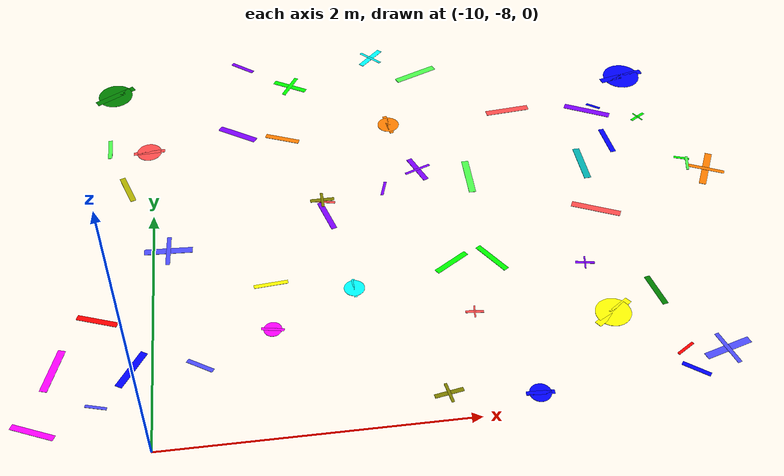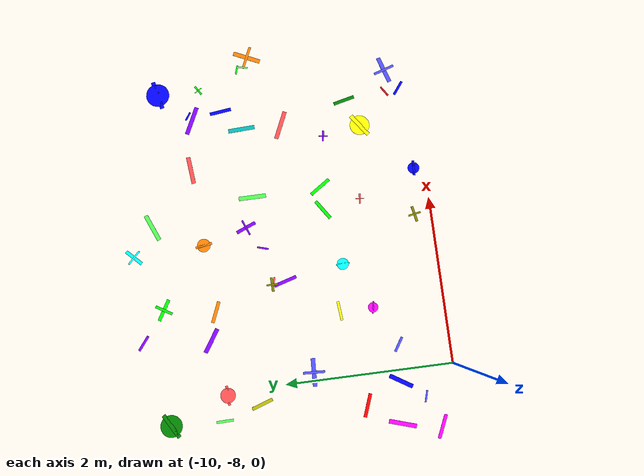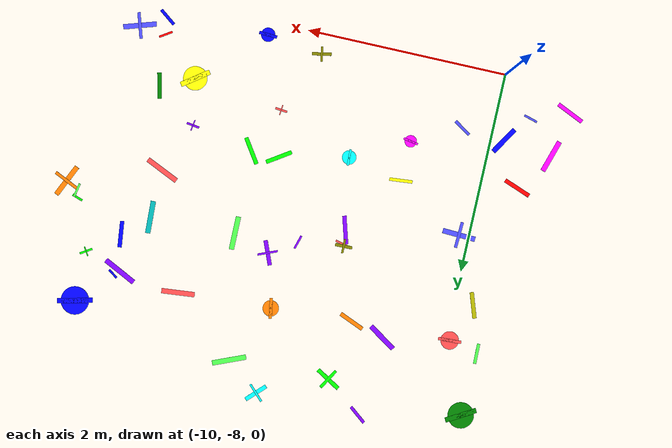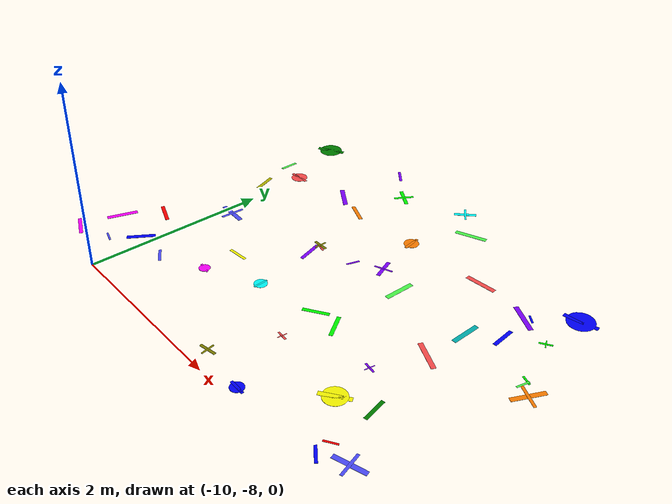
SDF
<sdf version="1.6">
 <world name="default">
  <model name="letter_B_337">
   <static>true</static>
   <pose>-10.71 -7.77 0.009 0 0 5.861</pose>
   <link name="link">
    <visual name="visual">
     <geometry><box><size>0.29 0.04 0.002</size></box></geometry>
     <material>
      <ambient>1.0 0.0 1.0 1</ambient>
      <diffuse>1.0 0.0 1.0 1</diffuse>
      <specular>0.1 0.1 0.1 1</specular>
     </material>
    </visual>
   </link>
  </model>
  <model name="letter_S_340">
   <static>true</static>
   <pose>-10.62 -7.31 0.008 0 0 1.270</pose>
   <link name="link">
    <visual name="visual">
     <geometry><box><size>0.33 0.05 0.002</size></box></geometry>
     <material>
      <ambient>1.0 0.0 1.0 1</ambient>
      <diffuse>1.0 0.0 1.0 1</diffuse>
      <specular>0.1 0.1 0.1 1</specular>
     </material>
    </visual>
   </link>
  </model>
  <model name="letter_Z_416">
   <static>true</static>
   <pose>-10.34 -7.63 0.008 0 0 6.004</pose>
   <link name="link">
    <visual name="visual">
     <geometry><box><size>0.14 0.02 0.002</size></box></geometry>
     <material>
      <ambient>0.3 0.3 1.0 1</ambient>
      <diffuse>0.3 0.3 1.0 1</diffuse>
      <specular>0.1 0.1 0.1 1</specular>
     </material>
    </visual>
   </link>
  </model>
  <model name="letter_W_418">
   <static>true</static>
   <pose>-10.13 -7.36 0.005 0 0 1.017</pose>
   <link name="link">
    <visual name="visual">
     <geometry><box><size>0.30 0.05 0.002</size></box></geometry>
     <material>
      <ambient>0.0 0.0 1.0 1</ambient>
      <diffuse>0.0 0.0 1.0 1</diffuse>
      <specular>0.1 0.1 0.1 1</specular>
     </material>
    </visual>
   </link>
  </model>
  <model name="letter_B_419">
   <static>true</static>
   <pose>-10.36 -6.93 0.007 0 0 2.784</pose>
   <link name="link">
    <visual name="visual">
     <geometry><box><size>0.28 0.04 0.002</size></box></geometry>
     <material>
      <ambient>1.0 0.0 0.0 1</ambient>
      <diffuse>1.0 0.0 0.0 1</diffuse>
      <specular>0.1 0.1 0.1 1</specular>
     </material>
    </visual>
   </link>
  </model>
  <model name="letter_K_420">
   <static>true</static>
   <pose>-9.70 -7.39 0.012 0 0 2.569</pose>
   <link name="link">
    <visual name="visual">
     <geometry><box><size>0.19 0.03 0.002</size></box></geometry>
     <material>
      <ambient>0.3 0.3 1.0 1</ambient>
      <diffuse>0.3 0.3 1.0 1</diffuse>
      <specular>0.1 0.1 0.1 1</specular>
     </material>
    </visual>
   </link>
  </model>
  <model name="letter_U_421">
   <static>true</static>
   <pose>-10.19 -5.70 0.009 0 0 5.040</pose>
   <link name="link">
    <visual name="visual">
     <geometry><box><size>0.26 0.04 0.002</size></box></geometry>
     <material>
      <ambient>0.7 0.7 0.0 1</ambient>
      <diffuse>0.7 0.7 0.0 1</diffuse>
      <specular>0.1 0.1 0.1 1</specular>
     </material>
    </visual>
   </link>
  </model>
  <model name="letter_H_422">
   <static>true</static>
   <pose>-9.90 -6.35 0.003 0 0 6.237</pose>
   <link name="link">
    <visual name="visual">
     <geometry><box><size>0.33 0.05 0.002</size></box></geometry>
     <material>
      <ambient>0.3 0.3 1.0 1</ambient>
      <diffuse>0.3 0.3 1.0 1</diffuse>
      <specular>0.1 0.1 0.1 1</specular>
     </material>
    </visual>
    <visual name="visual2">
     <pose>0 0 0.001 0 0 1.57</pose>
     <geometry><box><size>0.26 0.03 0.001</size></box></geometry>
     <material><ambient>0.3 0.3 1.0 1</ambient><diffuse>0.3 0.3 1.0 1</diffuse></material>
    </visual>
   </link>
  </model>
  <model name="letter_G_423">
   <static>true</static>
   <pose>-10.31 -4.61 0.006 0 0 0.526</pose>
   <link name="link">
    <visual name="visual">
     <geometry><box><size>0.32 0.05 0.002</size></box></geometry>
     <material>
      <ambient>0.0 0.5 0.0 1</ambient>
      <diffuse>0.0 0.5 0.0 1</diffuse>
      <specular>0.1 0.1 0.1 1</specular>
     </material>
    </visual>
    <visual name="visual2">
     <geometry><cylinder><radius>0.13</radius><length>0.002</length></cylinder></geometry>
     <material><ambient>0.0 0.5 0.0 1</ambient><diffuse>0.0 0.5 0.0 1</diffuse></material>
    </visual>
   </link>
  </model>
  <model name="letter_J_424">
   <static>true</static>
   <pose>-10.33 -5.24 0.005 0 0 4.730</pose>
   <link name="link">
    <visual name="visual">
     <geometry><box><size>0.20 0.03 0.002</size></box></geometry>
     <material>
      <ambient>0.3 1.0 0.3 1</ambient>
      <diffuse>0.3 1.0 0.3 1</diffuse>
      <specular>0.1 0.1 0.1 1</specular>
     </material>
    </visual>
   </link>
  </model>
  <model name="letter_O_425">
   <static>true</static>
   <pose>-10.04 -5.31 0.007 0 0 0.050</pose>
   <link name="link">
    <visual name="visual">
     <geometry><box><size>0.23 0.03 0.002</size></box></geometry>
     <material>
      <ambient>1.0 0.3 0.3 1</ambient>
      <diffuse>1.0 0.3 0.3 1</diffuse>
      <specular>0.1 0.1 0.1 1</specular>
     </material>
    </visual>
    <visual name="visual2">
     <geometry><cylinder><radius>0.09</radius><length>0.002</length></cylinder></geometry>
     <material><ambient>1.0 0.3 0.3 1</ambient><diffuse>1.0 0.3 0.3 1</diffuse></material>
    </visual>
   </link>
  </model>
  <model name="letter_C_494">
   <static>true</static>
   <pose>-8.67 -6.86 0.008 0 0 4.747</pose>
   <link name="link">
    <visual name="visual">
     <geometry><box><size>0.16 0.02 0.002</size></box></geometry>
     <material>
      <ambient>0.0 1.0 1.0 1</ambient>
      <diffuse>0.0 1.0 1.0 1</diffuse>
      <specular>0.1 0.1 0.1 1</specular>
     </material>
    </visual>
    <visual name="visual2">
     <geometry><cylinder><radius>0.07</radius><length>0.002</length></cylinder></geometry>
     <material><ambient>0.0 1.0 1.0 1</ambient><diffuse>0.0 1.0 1.0 1</diffuse></material>
    </visual>
   </link>
  </model>
  <model name="letter_X_495">
   <static>true</static>
   <pose>-9.22 -6.75 0.004 0 0 0.092</pose>
   <link name="link">
    <visual name="visual">
     <geometry><box><size>0.23 0.03 0.002</size></box></geometry>
     <material>
      <ambient>1.0 1.0 0.0 1</ambient>
      <diffuse>1.0 1.0 0.0 1</diffuse>
      <specular>0.1 0.1 0.1 1</specular>
     </material>
    </visual>
   </link>
  </model>
  <model name="letter_O_496">
   <static>true</static>
   <pose>-9.23 -7.15 0.010 0 0 2.959</pose>
   <link name="link">
    <visual name="visual">
     <geometry><box><size>0.15 0.02 0.002</size></box></geometry>
     <material>
      <ambient>1.0 0.0 1.0 1</ambient>
      <diffuse>1.0 0.0 1.0 1</diffuse>
      <specular>0.1 0.1 0.1 1</specular>
     </material>
    </visual>
    <visual name="visual2">
     <geometry><cylinder><radius>0.06</radius><length>0.002</length></cylinder></geometry>
     <material><ambient>1.0 0.0 1.0 1</ambient><diffuse>1.0 0.0 1.0 1</diffuse></material>
    </visual>
   </link>
  </model>
  <model name="letter_P_497">
   <static>true</static>
   <pose>-8.79 -6.15 0.008 0 0 1.856</pose>
   <link name="link">
    <visual name="visual">
     <geometry><box><size>0.28 0.04 0.002</size></box></geometry>
     <material>
      <ambient>0.5 0.0 1.0 1</ambient>
      <diffuse>0.5 0.0 1.0 1</diffuse>
      <specular>0.1 0.1 0.1 1</specular>
     </material>
    </visual>
   </link>
  </model>
  <model name="letter_E_498">
   <static>true</static>
   <pose>-8.81 -5.99 0.011 0 0 3.155</pose>
   <link name="link">
    <visual name="visual">
     <geometry><box><size>0.17 0.03 0.002</size></box></geometry>
     <material>
      <ambient>0.5 0.5 0.0 1</ambient>
      <diffuse>0.5 0.5 0.0 1</diffuse>
      <specular>0.1 0.1 0.1 1</specular>
     </material>
    </visual>
    <visual name="visual2">
     <pose>0 0 0.001 0 0 1.57</pose>
     <geometry><box><size>0.14 0.02 0.001</size></box></geometry>
     <material><ambient>0.5 0.5 0.0 1</ambient><diffuse>0.5 0.5 0.0 1</diffuse></material>
    </visual>
   </link>
  </model>
  <model name="letter_M_499">
   <static>true</static>
   <pose>-8.79 -6.01 0.009 0 0 2.912</pose>
   <link name="link">
    <visual name="visual">
     <geometry><box><size>0.14 0.02 0.002</size></box></geometry>
     <material>
      <ambient>1.0 0.3 0.3 1</ambient>
      <diffuse>1.0 0.3 0.3 1</diffuse>
      <specular>0.1 0.1 0.1 1</specular>
     </material>
    </visual>
   </link>
  </model>
  <model name="letter_W_500">
   <static>true</static>
   <pose>-9.05 -5.28 0.003 0 0 2.748</pose>
   <link name="link">
    <visual name="visual">
     <geometry><box><size>0.26 0.04 0.002</size></box></geometry>
     <material>
      <ambient>1.0 0.5 0.0 1</ambient>
      <diffuse>1.0 0.5 0.0 1</diffuse>
      <specular>0.1 0.1 0.1 1</specular>
     </material>
    </visual>
   </link>
  </model>
  <model name="letter_U_501">
   <static>true</static>
   <pose>-9.38 -5.19 0.007 0 0 2.563</pose>
   <link name="link">
    <visual name="visual">
     <geometry><box><size>0.31 0.05 0.002</size></box></geometry>
     <material>
      <ambient>0.5 0.0 1.0 1</ambient>
      <diffuse>0.5 0.0 1.0 1</diffuse>
      <specular>0.1 0.1 0.1 1</specular>
     </material>
    </visual>
   </link>
  </model>
  <model name="letter_L_502">
   <static>true</static>
   <pose>-8.95 -4.67 0.009 0 0 2.610</pose>
   <link name="link">
    <visual name="visual">
     <geometry><box><size>0.27 0.04 0.002</size></box></geometry>
     <material>
      <ambient>0.0 1.0 0.0 1</ambient>
      <diffuse>0.0 1.0 0.0 1</diffuse>
      <specular>0.1 0.1 0.1 1</specular>
     </material>
    </visual>
    <visual name="visual2">
     <pose>0 0 0.001 0 0 1.57</pose>
     <geometry><box><size>0.22 0.03 0.001</size></box></geometry>
     <material><ambient>0.0 1.0 0.0 1</ambient><diffuse>0.0 1.0 0.0 1</diffuse></material>
    </visual>
   </link>
  </model>
  <model name="letter_Z_505">
   <static>true</static>
   <pose>-9.31 -4.39 0.013 0 0 2.475</pose>
   <link name="link">
    <visual name="visual">
     <geometry><box><size>0.20 0.03 0.002</size></box></geometry>
     <material>
      <ambient>0.5 0.0 1.0 1</ambient>
      <diffuse>0.5 0.0 1.0 1</diffuse>
      <specular>0.1 0.1 0.1 1</specular>
     </material>
    </visual>
   </link>
  </model>
  <model name="letter_L_577">
   <static>true</static>
   <pose>-8.18 -7.80 0.007 0 0 3.326</pose>
   <link name="link">
    <visual name="visual">
     <geometry><box><size>0.19 0.03 0.002</size></box></geometry>
     <material>
      <ambient>0.5 0.5 0.0 1</ambient>
      <diffuse>0.5 0.5 0.0 1</diffuse>
      <specular>0.1 0.1 0.1 1</specular>
     </material>
    </visual>
    <visual name="visual2">
     <pose>0 0 0.001 0 0 1.57</pose>
     <geometry><box><size>0.15 0.02 0.001</size></box></geometry>
     <material><ambient>0.5 0.5 0.0 1</ambient><diffuse>0.5 0.5 0.0 1</diffuse></material>
    </visual>
   </link>
  </model>
  <model name="letter_G_578">
   <static>true</static>
   <pose>-7.62 -7.87 0.004 0 0 3.096</pose>
   <link name="link">
    <visual name="visual">
     <geometry><box><size>0.18 0.03 0.002</size></box></geometry>
     <material>
      <ambient>0.0 0.0 1.0 1</ambient>
      <diffuse>0.0 0.0 1.0 1</diffuse>
      <specular>0.1 0.1 0.1 1</specular>
     </material>
    </visual>
    <visual name="visual2">
     <geometry><cylinder><radius>0.07</radius><length>0.002</length></cylinder></geometry>
     <material><ambient>0.0 0.0 1.0 1</ambient><diffuse>0.0 0.0 1.0 1</diffuse></material>
    </visual>
   </link>
  </model>
  <model name="letter_M_579">
   <static>true</static>
   <pose>-7.71 -6.71 0.012 0 0 5.305</pose>
   <link name="link">
    <visual name="visual">
     <geometry><box><size>0.28 0.04 0.002</size></box></geometry>
     <material>
      <ambient>0.0 1.0 0.0 1</ambient>
      <diffuse>0.0 1.0 0.0 1</diffuse>
      <specular>0.1 0.1 0.1 1</specular>
     </material>
    </visual>
   </link>
  </model>
  <model name="letter_L_580">
   <static>true</static>
   <pose>-7.91 -7.17 0.010 0 0 6.184</pose>
   <link name="link">
    <visual name="visual">
     <geometry><box><size>0.12 0.02 0.002</size></box></geometry>
     <material>
      <ambient>1.0 0.3 0.3 1</ambient>
      <diffuse>1.0 0.3 0.3 1</diffuse>
      <specular>0.1 0.1 0.1 1</specular>
     </material>
    </visual>
    <visual name="visual2">
     <pose>0 0 0.001 0 0 1.57</pose>
     <geometry><box><size>0.10 0.01 0.001</size></box></geometry>
     <material><ambient>1.0 0.3 0.3 1</ambient><diffuse>1.0 0.3 0.3 1</diffuse></material>
    </visual>
   </link>
  </model>
  <model name="letter_P_581">
   <static>true</static>
   <pose>-7.99 -6.71 0.006 0 0 0.587</pose>
   <link name="link">
    <visual name="visual">
     <geometry><box><size>0.27 0.04 0.002</size></box></geometry>
     <material>
      <ambient>0.0 1.0 0.0 1</ambient>
      <diffuse>0.0 1.0 0.0 1</diffuse>
      <specular>0.1 0.1 0.1 1</specular>
     </material>
    </visual>
   </link>
  </model>
  <model name="letter_S_582">
   <static>true</static>
   <pose>-8.36 -5.93 0.013 0 0 4.425</pose>
   <link name="link">
    <visual name="visual">
     <geometry><box><size>0.14 0.02 0.002</size></box></geometry>
     <material>
      <ambient>0.5 0.0 1.0 1</ambient>
      <diffuse>0.5 0.0 1.0 1</diffuse>
      <specular>0.1 0.1 0.1 1</specular>
     </material>
    </visual>
   </link>
  </model>
  <model name="letter_E_583">
   <static>true</static>
   <pose>-8.09 -5.76 0.012 0 0 5.101</pose>
   <link name="link">
    <visual name="visual">
     <geometry><box><size>0.25 0.04 0.002</size></box></geometry>
     <material>
      <ambient>0.5 0.0 1.0 1</ambient>
      <diffuse>0.5 0.0 1.0 1</diffuse>
      <specular>0.1 0.1 0.1 1</specular>
     </material>
    </visual>
    <visual name="visual2">
     <pose>0 0 0.001 0 0 1.57</pose>
     <geometry><box><size>0.20 0.02 0.001</size></box></geometry>
     <material><ambient>0.5 0.0 1.0 1</ambient><diffuse>0.5 0.0 1.0 1</diffuse></material>
    </visual>
   </link>
  </model>
  <model name="letter_B_584">
   <static>true</static>
   <pose>-7.73 -5.88 0.008 0 0 1.576</pose>
   <link name="link">
    <visual name="visual">
     <geometry><box><size>0.33 0.05 0.002</size></box></geometry>
     <material>
      <ambient>0.3 1.0 0.3 1</ambient>
      <diffuse>0.3 1.0 0.3 1</diffuse>
      <specular>0.1 0.1 0.1 1</specular>
     </material>
    </visual>
   </link>
  </model>
  <model name="letter_C_585">
   <static>true</static>
   <pose>-8.24 -5.23 0.010 0 0 1.744</pose>
   <link name="link">
    <visual name="visual">
     <geometry><box><size>0.20 0.03 0.002</size></box></geometry>
     <material>
      <ambient>1.0 0.5 0.0 1</ambient>
      <diffuse>1.0 0.5 0.0 1</diffuse>
      <specular>0.1 0.1 0.1 1</specular>
     </material>
    </visual>
    <visual name="visual2">
     <geometry><cylinder><radius>0.08</radius><length>0.002</length></cylinder></geometry>
     <material><ambient>1.0 0.5 0.0 1</ambient><diffuse>1.0 0.5 0.0 1</diffuse></material>
    </visual>
   </link>
  </model>
  <model name="letter_M_586">
   <static>true</static>
   <pose>-7.95 -4.64 0.007 0 0 0.395</pose>
   <link name="link">
    <visual name="visual">
     <geometry><box><size>0.34 0.05 0.002</size></box></geometry>
     <material>
      <ambient>0.3 1.0 0.3 1</ambient>
      <diffuse>0.3 1.0 0.3 1</diffuse>
      <specular>0.1 0.1 0.1 1</specular>
     </material>
    </visual>
   </link>
  </model>
  <model name="letter_H_587">
   <static>true</static>
   <pose>-8.28 -4.38 0.003 0 0 3.931</pose>
   <link name="link">
    <visual name="visual">
     <geometry><box><size>0.24 0.04 0.002</size></box></geometry>
     <material>
      <ambient>0.0 1.0 1.0 1</ambient>
      <diffuse>0.0 1.0 1.0 1</diffuse>
      <specular>0.1 0.1 0.1 1</specular>
     </material>
    </visual>
    <visual name="visual2">
     <pose>0 0 0.001 0 0 1.57</pose>
     <geometry><box><size>0.20 0.02 0.001</size></box></geometry>
     <material><ambient>0.0 1.0 1.0 1</ambient><diffuse>0.0 1.0 1.0 1</diffuse></material>
    </visual>
   </link>
  </model>
  <model name="letter_J_652">
   <static>true</static>
   <pose>-6.63 -7.65 0.010 0 0 0.579</pose>
   <link name="link">
    <visual name="visual">
     <geometry><box><size>0.14 0.02 0.002</size></box></geometry>
     <material>
      <ambient>1.0 0.0 0.0 1</ambient>
      <diffuse>1.0 0.0 0.0 1</diffuse>
      <specular>0.1 0.1 0.1 1</specular>
     </material>
    </visual>
   </link>
  </model>
  <model name="letter_M_653">
   <static>true</static>
   <pose>-6.61 -7.82 0.011 0 0 5.635</pose>
   <link name="link">
    <visual name="visual">
     <geometry><box><size>0.19 0.03 0.002</size></box></geometry>
     <material>
      <ambient>0.0 0.0 1.0 1</ambient>
      <diffuse>0.0 0.0 1.0 1</diffuse>
      <specular>0.1 0.1 0.1 1</specular>
     </material>
    </visual>
   </link>
  </model>
  <model name="letter_P_654">
   <static>true</static>
   <pose>-6.68 -7.14 0.010 0 0 1.801</pose>
   <link name="link">
    <visual name="visual">
     <geometry><box><size>0.26 0.04 0.002</size></box></geometry>
     <material>
      <ambient>0.0 0.5 0.0 1</ambient>
      <diffuse>0.0 0.5 0.0 1</diffuse>
      <specular>0.1 0.1 0.1 1</specular>
     </material>
    </visual>
   </link>
  </model>
  <model name="letter_T_655">
   <static>true</static>
   <pose>-7.09 -6.83 0.008 0 0 6.130</pose>
   <link name="link">
    <visual name="visual">
     <geometry><box><size>0.13 0.02 0.002</size></box></geometry>
     <material>
      <ambient>0.5 0.0 1.0 1</ambient>
      <diffuse>0.5 0.0 1.0 1</diffuse>
      <specular>0.1 0.1 0.1 1</specular>
     </material>
    </visual>
    <visual name="visual2">
     <pose>0 0 0.001 0 0 1.57</pose>
     <geometry><box><size>0.11 0.01 0.001</size></box></geometry>
     <material><ambient>0.5 0.0 1.0 1</ambient><diffuse>0.5 0.0 1.0 1</diffuse></material>
    </visual>
   </link>
  </model>
  <model name="letter_C_656">
   <static>true</static>
   <pose>-7.01 -7.29 0.007 0 0 0.625</pose>
   <link name="link">
    <visual name="visual">
     <geometry><box><size>0.31 0.05 0.002</size></box></geometry>
     <material>
      <ambient>1.0 1.0 0.0 1</ambient>
      <diffuse>1.0 1.0 0.0 1</diffuse>
      <specular>0.1 0.1 0.1 1</specular>
     </material>
    </visual>
    <visual name="visual2">
     <geometry><cylinder><radius>0.12</radius><length>0.002</length></cylinder></geometry>
     <material><ambient>1.0 1.0 0.0 1</ambient><diffuse>1.0 1.0 0.0 1</diffuse></material>
    </visual>
   </link>
  </model>
  <model name="letter_Y_657">
   <static>true</static>
   <pose>-6.88 -5.85 0.012 0 0 4.757</pose>
   <link name="link">
    <visual name="visual">
     <geometry><box><size>0.32 0.05 0.002</size></box></geometry>
     <material>
      <ambient>0.0 0.7 0.7 1</ambient>
      <diffuse>0.0 0.7 0.7 1</diffuse>
      <specular>0.1 0.1 0.1 1</specular>
     </material>
    </visual>
   </link>
  </model>
  <model name="letter_J_658">
   <static>true</static>
   <pose>-6.89 -6.33 0.009 0 0 5.860</pose>
   <link name="link">
    <visual name="visual">
     <geometry><box><size>0.35 0.05 0.002</size></box></geometry>
     <material>
      <ambient>1.0 0.3 0.3 1</ambient>
      <diffuse>1.0 0.3 0.3 1</diffuse>
      <specular>0.1 0.1 0.1 1</specular>
     </material>
    </visual>
   </link>
  </model>
  <model name="letter_B_659">
   <static>true</static>
   <pose>-6.63 -5.62 0.006 0 0 1.692</pose>
   <link name="link">
    <visual name="visual">
     <geometry><box><size>0.26 0.04 0.002</size></box></geometry>
     <material>
      <ambient>0.0 0.0 1.0 1</ambient>
      <diffuse>0.0 0.0 1.0 1</diffuse>
      <specular>0.1 0.1 0.1 1</specular>
     </material>
    </visual>
   </link>
  </model>
  <model name="letter_M_660">
   <static>true</static>
   <pose>-6.64 -5.22 0.012 0 0 5.676</pose>
   <link name="link">
    <visual name="visual">
     <geometry><box><size>0.11 0.02 0.002</size></box></geometry>
     <material>
      <ambient>0.0 0.0 1.0 1</ambient>
      <diffuse>0.0 0.0 1.0 1</diffuse>
      <specular>0.1 0.1 0.1 1</specular>
     </material>
    </visual>
   </link>
  </model>
  <model name="letter_W_661">
   <static>true</static>
   <pose>-6.70 -5.26 0.007 0 0 5.828</pose>
   <link name="link">
    <visual name="visual">
     <geometry><box><size>0.35 0.05 0.002</size></box></geometry>
     <material>
      <ambient>0.5 0.0 1.0 1</ambient>
      <diffuse>0.5 0.0 1.0 1</diffuse>
      <specular>0.1 0.1 0.1 1</specular>
     </material>
    </visual>
   </link>
  </model>
  <model name="letter_Y_662">
   <static>true</static>
   <pose>-7.31 -5.18 0.009 0 0 0.097</pose>
   <link name="link">
    <visual name="visual">
     <geometry><box><size>0.33 0.05 0.002</size></box></geometry>
     <material>
      <ambient>1.0 0.3 0.3 1</ambient>
      <diffuse>1.0 0.3 0.3 1</diffuse>
      <specular>0.1 0.1 0.1 1</specular>
     </material>
    </visual>
   </link>
  </model>
  <model name="letter_A_729">
   <static>true</static>
   <pose>-6.36 -7.68 0.008 0 0 0.306</pose>
   <link name="link">
    <visual name="visual">
     <geometry><box><size>0.33 0.05 0.002</size></box></geometry>
     <material>
      <ambient>0.3 0.3 1.0 1</ambient>
      <diffuse>0.3 0.3 1.0 1</diffuse>
      <specular>0.1 0.1 0.1 1</specular>
     </material>
    </visual>
    <visual name="visual2">
     <pose>0 0 0.001 0 0 1.57</pose>
     <geometry><box><size>0.26 0.03 0.001</size></box></geometry>
     <material><ambient>0.3 0.3 1.0 1</ambient><diffuse>0.3 0.3 1.0 1</diffuse></material>
    </visual>
   </link>
  </model>
  <model name="letter_K_734">
   <static>true</static>
   <pose>-6.11 -5.95 0.012 0 0 1.370</pose>
   <link name="link">
    <visual name="visual">
     <geometry><box><size>0.14 0.02 0.002</size></box></geometry>
     <material>
      <ambient>0.3 1.0 0.3 1</ambient>
      <diffuse>0.3 1.0 0.3 1</diffuse>
      <specular>0.1 0.1 0.1 1</specular>
     </material>
    </visual>
   </link>
  </model>
  <model name="letter_E_735">
   <static>true</static>
   <pose>-5.99 -6.02 0.006 0 0 4.285</pose>
   <link name="link">
    <visual name="visual">
     <geometry><box><size>0.34 0.05 0.002</size></box></geometry>
     <material>
      <ambient>1.0 0.5 0.0 1</ambient>
      <diffuse>1.0 0.5 0.0 1</diffuse>
      <specular>0.1 0.1 0.1 1</specular>
     </material>
    </visual>
    <visual name="visual2">
     <pose>0 0 0.001 0 0 1.57</pose>
     <geometry><box><size>0.27 0.03 0.001</size></box></geometry>
     <material><ambient>1.0 0.5 0.0 1</ambient><diffuse>1.0 0.5 0.0 1</diffuse></material>
    </visual>
   </link>
  </model>
  <model name="letter_B_736">
   <static>true</static>
   <pose>-6.13 -5.88 0.003 0 0 2.812</pose>
   <link name="link">
    <visual name="visual">
     <geometry><box><size>0.11 0.02 0.002</size></box></geometry>
     <material>
      <ambient>0.0 1.0 0.0 1</ambient>
      <diffuse>0.0 1.0 0.0 1</diffuse>
      <specular>0.1 0.1 0.1 1</specular>
     </material>
    </visual>
   </link>
  </model>
  <model name="letter_C_737">
   <static>true</static>
   <pose>-6.33 -4.88 0.007 0 0 3.368</pose>
   <link name="link">
    <visual name="visual">
     <geometry><box><size>0.35 0.05 0.002</size></box></geometry>
     <material>
      <ambient>0.0 0.0 1.0 1</ambient>
      <diffuse>0.0 0.0 1.0 1</diffuse>
      <specular>0.1 0.1 0.1 1</specular>
     </material>
    </visual>
    <visual name="visual2">
     <geometry><cylinder><radius>0.14</radius><length>0.002</length></cylinder></geometry>
     <material><ambient>0.0 0.0 1.0 1</ambient><diffuse>0.0 0.0 1.0 1</diffuse></material>
    </visual>
   </link>
  </model>
  <model name="letter_E_738">
   <static>true</static>
   <pose>-6.33 -5.38 0.005 0 0 3.710</pose>
   <link name="link">
    <visual name="visual">
     <geometry><box><size>0.13 0.02 0.002</size></box></geometry>
     <material>
      <ambient>0.0 1.0 0.0 1</ambient>
      <diffuse>0.0 1.0 0.0 1</diffuse>
      <specular>0.1 0.1 0.1 1</specular>
     </material>
    </visual>
    <visual name="visual2">
     <pose>0 0 0.001 0 0 1.57</pose>
     <geometry><box><size>0.10 0.01 0.001</size></box></geometry>
     <material><ambient>0.0 1.0 0.0 1</ambient><diffuse>0.0 1.0 0.0 1</diffuse></material>
    </visual>
   </link>
  </model>
 </world>
</sdf>
